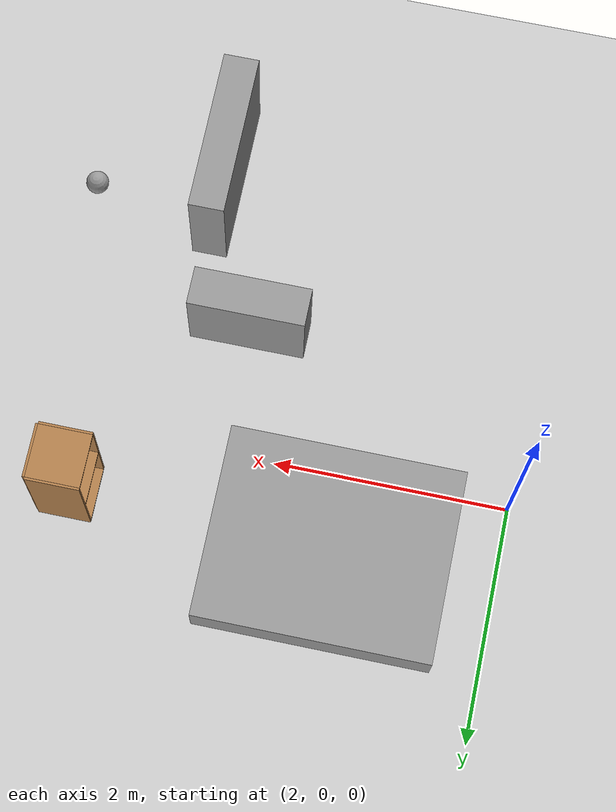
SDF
<sdf version="1.6">
 <world name="default">
  <model name="ground_plane">
   <static>1</static>
   <link name="link">
    <collision name="collision">
     <geometry><plane><normal>0 0 1</normal><size>100 100</size></plane></geometry>
     <surface><friction><ode><mu>100</mu><mu2>50</mu2></ode></friction></surface>
    </collision>
    <visual name="visual">
     <cast_shadows>0</cast_shadows>
     <geometry><plane><normal>0 0 1</normal><size>100 100</size></plane></geometry>
     <material>
      <script><uri>file://media/materials/scripts/gazebo.material</uri><name>Gazebo/Grey</name></script>
     </material>
    </visual>
   </link>
  </model>
  <model name="cabinet">
   <static>1</static>
   <link name="cabinet_bottom_plate">
    <inertial>
     <pose>0 0 -1 0 -0 0</pose>
     <inertia><ixx>2.05</ixx><ixy>0</ixy><ixz>0</ixz><iyy>2.05</iyy><iyz>0</iyz><izz>2.05</izz></inertia>
     <mass>25</mass>
    </inertial>
    <collision name="cabinet_bottom_plate_geom">
     <pose>0 0 0.01 0 -0 0</pose>
     <geometry><box><size>0.45 0.45 0.02</size></box></geometry>
    </collision>
    <visual name="cabinet_bottom_plate_geom_visual">
     <pose>0 0 0.01 0 -0 0</pose>
     <geometry><box><size>0.45 0.45 0.02</size></box></geometry>
     <material>
      <script><uri>file://media/materials/scripts/gazebo.material</uri><name>Gazebo/Wood</name></script>
     </material>
    </visual>
    <collision name="cabinet_bottom_plate_geom_cabinet_back_plate">
     <pose>0.235 0 0.51 0 -0 0</pose>
     <geometry><box><size>0.02 0.45 1.02</size></box></geometry>
    </collision>
    <visual name="cabinet_bottom_plate_geom_cabinet_back_plate_visual">
     <pose>0.235 0 0.51 0 -0 0</pose>
     <geometry><box><size>0.02 0.45 1.02</size></box></geometry>
     <material>
      <script><uri>file://media/materials/scripts/gazebo.material</uri><name>Gazebo/Wood</name></script>
     </material>
    </visual>
    <collision name="cabinet_bottom_plate_geom_cabinet_left_plate">
     <pose>0 0.235 0.51 0 -0 0</pose>
     <geometry><box><size>0.45 0.02 1.02</size></box></geometry>
    </collision>
    <visual name="cabinet_bottom_plate_geom_cabinet_left_plate_visual">
     <pose>0 0.235 0.51 0 -0 0</pose>
     <geometry><box><size>0.45 0.02 1.02</size></box></geometry>
     <material>
      <script><uri>file://media/materials/scripts/gazebo.material</uri><name>Gazebo/Wood</name></script>
     </material>
    </visual>
    <collision name="cabinet_bottom_plate_geom_cabinet_middle_plate">
     <pose>0 0 0.51 0 -0 0</pose>
     <geometry><box><size>0.45 0.45 0.02</size></box></geometry>
    </collision>
    <visual name="cabinet_bottom_plate_geom_cabinet_middle_plate_visual">
     <pose>0 0 0.51 0 -0 0</pose>
     <geometry><box><size>0.45 0.45 0.02</size></box></geometry>
     <material>
      <script><uri>file://media/materials/scripts/gazebo.material</uri><name>Gazebo/Wood</name></script>
     </material>
    </visual>
    <collision name="cabinet_bottom_plate_geom_cabinet_right_plate">
     <pose>0 -0.235 0.51 0 -0 0</pose>
     <geometry><box><size>0.45 0.02 1.02</size></box></geometry>
    </collision>
    <visual name="cabinet_bottom_plate_geom_cabinet_right_plate_visual">
     <pose>0 -0.235 0.51 0 -0 0</pose>
     <geometry><box><size>0.45 0.02 1.02</size></box></geometry>
     <material>
      <script><uri>file://media/materials/scripts/gazebo.material</uri><name>Gazebo/Wood</name></script>
     </material>
    </visual>
    <collision name="cabinet_bottom_plate_geom_cabinet_top_plate">
     <pose>0 0 1.01 0 -0 0</pose>
     <geometry><box><size>0.45 0.45 0.02</size></box></geometry>
    </collision>
    <visual name="cabinet_bottom_plate_geom_cabinet_top_plate_visual">
     <pose>0 0 1.01 0 -0 0</pose>
     <geometry><box><size>0.45 0.45 0.02</size></box></geometry>
     <material>
      <script><uri>file://media/materials/scripts/gazebo.material</uri><name>Gazebo/Wood</name></script>
     </material>
    </visual>
   </link>
   <pose>5.62784 0.569266 0 0 -0 0</pose>
  </model>
  <model name="unit_box_0">
   <pose>4.94869 -2.47351 0.5 0 -0 3e-06</pose>
   <link name="link">
    <inertial>
     <mass>1</mass>
     <inertia>
      <ixx>0.166667</ixx>
      <ixy>0</ixy>
      <ixz>0</ixz>
      <iyy>0.166667</iyy>
      <iyz>0</iyz>
      <izz>0.166667</izz>
     </inertia>
    </inertial>
    <collision name="collision"><geometry><box><size>0.305231 1.42052 1</size></box></geometry></collision>
    <visual name="visual">
     <geometry><box><size>0.305231 1.42052 1</size></box></geometry>
     <material>
      <script><name>Gazebo/Grey</name><uri>file://media/materials/scripts/gazebo.material</uri></script>
     </material>
    </visual>
   </link>
  </model>
  <model name="unit_box">
   <pose>3.39684 0.661306 0.175572 1.5e-05 -0 -4.7e-05</pose>
   <link name="link">
    <inertial>
     <mass>1</mass>
     <inertia>
      <ixx>0.166667</ixx>
      <ixy>0</ixy>
      <ixz>0</ixz>
      <iyy>0.166667</iyy>
      <iyz>0</iyz>
      <izz>0.166667</izz>
     </inertia>
    </inertial>
    <collision name="collision"><geometry><box><size>1.99948 1.6419 0.351169</size></box></geometry></collision>
    <visual name="visual">
     <geometry><box><size>1.99948 1.6419 0.351169</size></box></geometry>
     <material>
      <script><name>Gazebo/Grey</name><uri>file://media/materials/scripts/gazebo.material</uri></script>
     </material>
    </visual>
   </link>
  </model>
  <model name="unit_box_2">
   <pose>4.4491 -1.14575 0.400664 0 -0 0</pose>
   <link name="link">
    <inertial>
     <mass>1</mass>
     <inertia>
      <ixx>0.166667</ixx>
      <ixy>0</ixy>
      <ixz>0</ixz>
      <iyy>0.166667</iyy>
      <iyz>0</iyz>
      <izz>0.166667</izz>
     </inertia>
    </inertial>
    <collision name="collision"><geometry><box><size>1 0.331091 0.801328</size></box></geometry></collision>
    <visual name="visual">
     <geometry><box><size>1 0.331091 0.801328</size></box></geometry>
     <material>
      <script><name>Gazebo/Grey</name><uri>file://media/materials/scripts/gazebo.material</uri></script>
     </material>
    </visual>
   </link>
  </model>
  <model name="my_ball">
   <link name="link_0">
    <pose>0.030051 0.006106 0 0 -0 0</pose>
    <inertial>
     <mass>1</mass>
     <inertia><ixx>0.1</ixx><ixy>0</ixy><ixz>0</ixz><iyy>0.1</iyy><iyz>0</iyz><izz>0.1</izz></inertia>
    </inertial>
    <visual name="visual">
     <geometry><sphere><radius>0.1</radius></sphere></geometry>
     <material>
      <lighting>1</lighting>
      <script><uri>file://media/materials/scripts/gazebo.material</uri><name>Gazebo/Grey</name></script>
      <shader type="pixel"><normal_map>__default__</normal_map></shader>
      <ambient>1 1 1 1</ambient>
      <diffuse>1 1 1 1</diffuse>
      <specular>1 1 1 1</specular>
      <emissive>1 1 1 1</emissive>
     </material>
    </visual>
    <collision name="collision">
     <geometry><sphere><radius>0.1</radius></sphere></geometry>
     <surface>
      <friction>
       <ode><mu>1</mu><mu2>1</mu2><fdir1>0 0 0</fdir1><slip1>0</slip1><slip2>0</slip2></ode>
       <torsional>
        <coefficient>1</coefficient>
        <patch_radius>0</patch_radius>
        <surface_radius>0</surface_radius>
        <use_patch_radius>1</use_patch_radius>
        <ode><slip>0</slip></ode>
       </torsional>
      </friction>
      <bounce><restitution_coefficient>0</restitution_coefficient><threshold>1e+06</threshold></bounce>
      <contact>
       <collide_without_contact>0</collide_without_contact>
       <collide_without_contact_bitmask>1</collide_without_contact_bitmask>
       <collide_bitmask>1</collide_bitmask>
       <ode>
        <soft_cfm>0</soft_cfm>
        <soft_erp>0.2</soft_erp>
        <kp>1e+13</kp>
        <kd>1</kd>
        <max_vel>0.01</max_vel>
        <min_depth>0</min_depth>
       </ode>
       <bullet>
        <split_impulse>1</split_impulse>
        <split_impulse_penetration_threshold>-0.01</split_impulse_penetration_threshold>
        <soft_cfm>0</soft_cfm>
        <soft_erp>0.2</soft_erp>
        <kp>1e+13</kp>
        <kd>1</kd>
       </bullet>
      </contact>
     </surface>
    </collision>
   </link>
   <static>0</static>
   <pose>6.02171 -2.19386 0.1 0 -0 0</pose>
  </model>
 </world>
</sdf>
